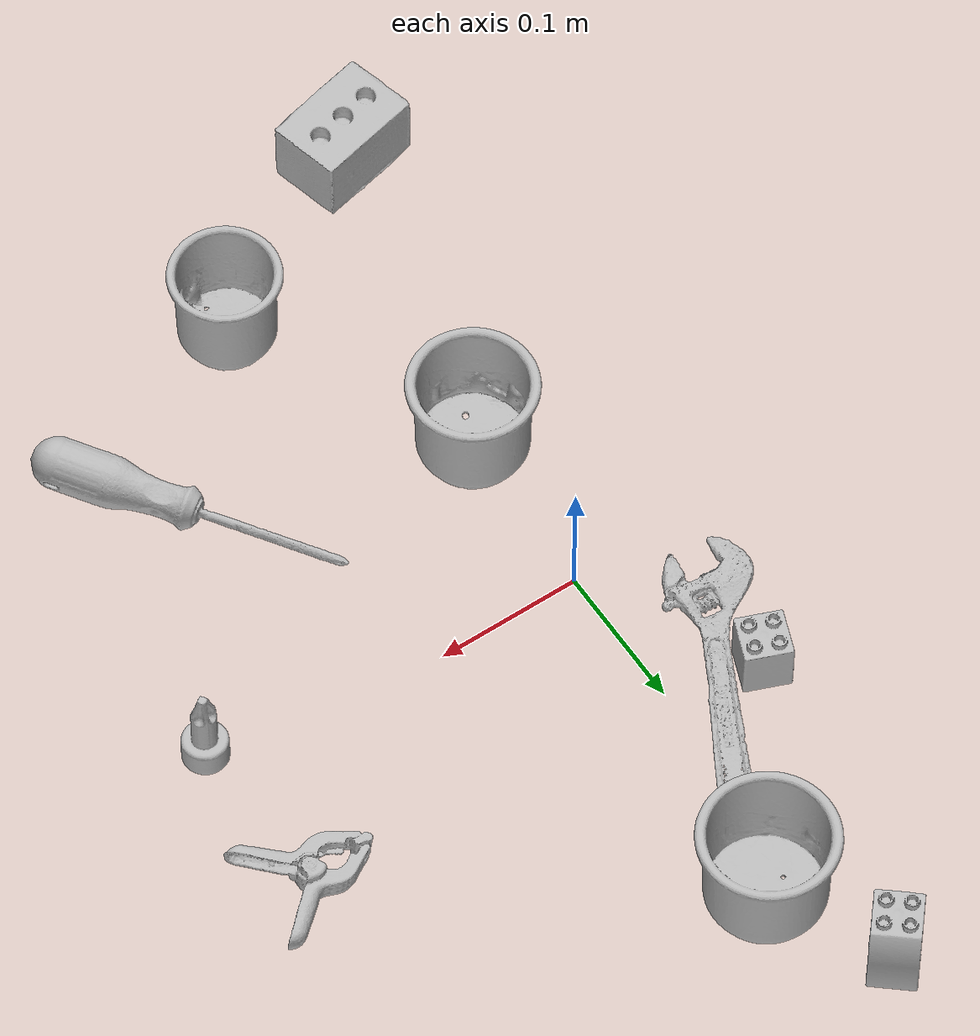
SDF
<sdf version="1.4">
  <world name="default">
    <light name="light1" type="point">
      <pose>0 0 1 0 0 0</pose>
      <diffuse>3 3 3 1</diffuse>
      <specular>3 3 3 1</specular>
    </light>
    <light name="light2" type="point">
      <pose>0 0.5 2 0 0 0</pose>
      <diffuse>1 1 1 1</diffuse>
      <specular>1 1 1 1</specular>
    </light>
    <light name="light3" type="point">
      <pose>0 0.5 2 0 0 0</pose>
      <diffuse>3 3 3 1</diffuse>
      <specular>3 3 3 1</specular>
    </light>
    <scene>
      <ambient>0.7 0.7 0.7</ambient>
    </scene>
    <model name="cup1">
      <link name="link_cup1">
        <collision name="default">
          <geometry>
            <mesh>
              <uri>model://h_cups/collision_meshes/collision.obj</uri>
              <scale>1.0 1.0 1.0</scale>
            </mesh>
          </geometry>
          <surface>
            <friction>
              <ode>
                <mu>0.5</mu>
                <mu2>0.5</mu2>
              </ode>
            </friction>
          <contact>
        <ode>
            <max_vel>0</max_vel>
            <min_depth>0.0001</min_depth>
            <kp>1e8</kp>
        </ode>
    </contact></surface>
        </collision>
        <visual name="default">
          <geometry>
            <mesh>
              <uri>model://h_cups/visual_meshes/visual.dae</uri>
              <scale>1.0 1.0 1.0</scale>
            </mesh>
          </geometry>
        </visual>
        <inertial>
          <mass>0.09017354249954224</mass>
          <pose>-2.702734127524309e-05 0.00023018653155304492 -0.0018405391601845622 -0.024362361674121313 0.06545247408237653 0.12884890922354367</pose>
          <inertia>
            <ixx>0.00011645493</ixx>
            <iyy>0.000115065246</iyy>
            <izz>0.00012212929</izz>
            <ixy>0</ixy>
            <ixz>0</ixz>
            <iyz>0</iyz>
          </inertia>
        </inertial>
      </link>
      <pose>0.029849717393517494 0.25346386432647705 0.0377579964697361 3.9950324584939865e-08 -1.8238209001673105e-07 -0.6914004572569233</pose>
    </model>
    <model name="cup2">
      <link name="link_cup2">
        <collision name="default">
          <geometry>
            <mesh>
              <uri>model://g_cups/collision_meshes/collision.obj</uri>
              <scale>1.0 1.0 1.0</scale>
            </mesh>
          </geometry>
          <surface>
            <friction>
              <ode>
                <mu>0.5</mu>
                <mu2>0.5</mu2>
              </ode>
            </friction>
          <contact>
        <ode>
            <max_vel>0</max_vel>
            <min_depth>0.0001</min_depth>
            <kp>1e8</kp>
        </ode>
    </contact></surface>
        </collision>
        <visual name="default">
          <geometry>
            <mesh>
              <uri>model://g_cups/visual_meshes/visual.dae</uri>
              <scale>1.0 1.0 1.0</scale>
            </mesh>
          </geometry>
        </visual>
        <inertial>
          <mass>0.07892031967639923</mass>
          <pose>-0.0007946275873109698 -4.206384619465098e-05 -0.0021329368464648724 -0.21381953376637775 -0.31410844314425407 0.31119468358147234</pose>
          <inertia>
            <ixx>9.211769e-05</ixx>
            <iyy>9.180432e-05</iyy>
            <izz>9.541806e-05</izz>
            <ixy>0</ixy>
            <ixz>0</ixz>
            <iyz>0</iyz>
          </inertia>
        </inertial>
      </link>
      <pose>-0.00349221657961607 -0.12020552903413773 0.03720300272107124 8.130092516135807e-08 3.0854673252931115e-07 0.18690239946251727</pose>
    </model>
    <model name="cup3">
      <link name="link_cup3">
        <collision name="default">
          <geometry>
            <mesh>
              <uri>model://e_cups/collision_meshes/collision.obj</uri>
              <scale>1.0 1.0 1.0</scale>
            </mesh>
          </geometry>
          <surface>
            <friction>
              <ode>
                <mu>0.5</mu>
                <mu2>0.5</mu2>
              </ode>
            </friction>
          <contact>
        <ode>
            <max_vel>0</max_vel>
            <min_depth>0.0001</min_depth>
            <kp>1e8</kp>
        </ode>
    </contact></surface>
        </collision>
        <visual name="default">
          <geometry>
            <mesh>
              <uri>model://e_cups/visual_meshes/visual.dae</uri>
              <scale>1.0 1.0 1.0</scale>
            </mesh>
          </geometry>
        </visual>
        <inertial>
          <mass>0.08743876963853836</mass>
          <pose>0.0011355745373293757 0.0028797851409763098 -0.0038829741533845663 0.6952398618358687 0.08767880823198544 -0.5235243888876825</pose>
          <inertia>
            <ixx>7.709911e-05</ixx>
            <iyy>8.05796e-05</iyy>
            <izz>7.3715666e-05</izz>
            <ixy>0</ixy>
            <ixz>0</ixz>
            <iyz>0</iyz>
          </inertia>
        </inertial>
      </link>
      <pose>0.08066080510616302 -0.280061811208725 0.035600244998931885 -1.678422920270492e-05 1.0898759106382021e-05 -0.6601665804566204</pose>
    </model>
    <model name="toy1">
      <link name="link_toy1">
        <collision name="default">
          <geometry>
            <mesh>
              <uri>model://d_lego_duplo/collision_meshes/collision.obj</uri>
              <scale>1.0 1.0 1.0</scale>
            </mesh>
          </geometry>
          <surface>
            <friction>
              <ode>
                <mu>0.5</mu>
                <mu2>0.5</mu2>
              </ode>
            </friction>
          <contact>
        <ode>
            <max_vel>0</max_vel>
            <min_depth>0.0001</min_depth>
            <kp>1e8</kp>
        </ode>
    </contact></surface>
        </collision>
        <visual name="default">
          <geometry>
            <mesh>
              <uri>model://d_lego_duplo/visual_meshes/visual.dae</uri>
              <scale>1.0 1.0 1.0</scale>
            </mesh>
          </geometry>
        </visual>
        <inertial>
          <mass>0.04292278364300728</mass>
          <pose>0.002830562647432089 0.00016366151976399124 0.0008589805802330375 0.08010895821025366 -0.3835521883517419 0.0010296961053417666</pose>
          <inertia>
            <ixx>8.309218e-06</ixx>
            <iyy>1.1793034e-05</iyy>
            <izz>1.1372727e-05</izz>
            <ixy>0</ixy>
            <ixz>0</ixz>
            <iyz>0</iyz>
          </inertia>
        </inertial>
      </link>
      <pose>-0.011533161625266075 0.3326730728149414 0.021740010008215904 -3.854449063826396e-08 -1.7930119845904146e-07 -2.2700179003224705</pose>
    </model>
    <model name="toy2">
      <link name="link_toy2">
        <collision name="default">
          <geometry>
            <mesh>
              <uri>model://foam_brick/collision_meshes/collision.obj</uri>
              <scale>1.0 1.0 1.0</scale>
            </mesh>
          </geometry>
          <surface>
            <friction>
              <ode>
                <mu>0.5</mu>
                <mu2>0.5</mu2>
              </ode>
            </friction>
          <contact>
        <ode>
            <max_vel>0</max_vel>
            <min_depth>0.0001</min_depth>
            <kp>1e8</kp>
        </ode>
    </contact></surface>
        </collision>
        <visual name="default">
          <geometry>
            <mesh>
              <uri>model://foam_brick/visual_meshes/visual.dae</uri>
              <scale>1.0 1.0 1.0</scale>
            </mesh>
          </geometry>
        </visual>
        <inertial>
          <mass>0.21218973398208618</mass>
          <pose>-0.0002522472059354186 0.00034584320383146405 -0.0002532101352699101 -0.2940188212014215 0.017274433063530492 -0.0007449861184219897</pose>
          <inertia>
            <ixx>9.268843e-05</ixx>
            <iyy>0.00014798183</iyy>
            <izz>0.00014986254</izz>
            <ixy>0</ixy>
            <ixz>0</ixz>
            <iyz>0</iyz>
          </inertia>
        </inertial>
      </link>
      <pose>-0.057383839040994644 -0.35290002822875977 0.025922803208231926 0.013417105816116213 0.004152432078214565 -2.901483210705091</pose>
    </model>
    <model name="toy3">
      <link name="link_toy3">
        <collision name="default">
          <geometry>
            <mesh>
              <uri>model://f_lego_duplo/collision_meshes/collision.obj</uri>
              <scale>1.0 1.0 1.0</scale>
            </mesh>
          </geometry>
          <surface>
            <friction>
              <ode>
                <mu>0.5</mu>
                <mu2>0.5</mu2>
              </ode>
            </friction>
          <contact>
        <ode>
            <max_vel>0</max_vel>
            <min_depth>0.0001</min_depth>
            <kp>1e8</kp>
        </ode>
    </contact></surface>
        </collision>
        <visual name="default">
          <geometry>
            <mesh>
              <uri>model://f_lego_duplo/visual_meshes/visual.dae</uri>
              <scale>1.0 1.0 1.0</scale>
            </mesh>
          </geometry>
        </visual>
        <inertial>
          <mass>0.024021470919251442</mass>
          <pose>2.3694197807344608e-05 0.00013393140397965908 0.0018837875686585903 0.02983869554967358 -0.014424868856459862 -0.6756716113514201</pose>
          <inertia>
            <ixx>5.075869e-06</ixx>
            <iyy>5.1210886e-06</iyy>
            <izz>4.4060694e-06</izz>
            <ixy>0</ixy>
            <ixz>0</ixz>
            <iyz>0</iyz>
          </inertia>
        </inertial>
      </link>
      <pose>-0.06244293227791786 0.11823061853647232 0.021871007978916168 3.2932561921377735e-06 8.852877967115598e-07 -0.37268194817395656</pose>
    </model>
    <model name="toy4">
      <link name="link_toy4">
        <collision name="default">
          <geometry>
            <mesh>
              <uri>model://d_toy_airplane/collision_meshes/collision.obj</uri>
              <scale>1.0 1.0 1.0</scale>
            </mesh>
          </geometry>
          <surface>
            <friction>
              <ode>
                <mu>0.5</mu>
                <mu2>0.5</mu2>
              </ode>
            </friction>
          <contact>
        <ode>
            <max_vel>0</max_vel>
            <min_depth>0.0001</min_depth>
            <kp>1e8</kp>
        </ode>
    </contact></surface>
        </collision>
        <visual name="default">
          <geometry>
            <mesh>
              <uri>model://d_toy_airplane/visual_meshes/visual.dae</uri>
              <scale>1.0 1.0 1.0</scale>
            </mesh>
          </geometry>
        </visual>
        <inertial>
          <mass>0.024586454033851624</mass>
          <pose>9.410288475919515e-05 -5.809331560158171e-05 -0.011728096753358841 0.0002662237897190017 0.004679022855495211 0.5193045098973154</pose>
          <inertia>
            <ixx>7.370539e-06</ixx>
            <iyy>7.376099e-06</iyy>
            <izz>2.2252145e-06</izz>
            <ixy>0</ixy>
            <ixz>0</ixz>
            <iyz>0</iyz>
          </inertia>
        </inertial>
      </link>
      <pose>0.2624196708202362 -0.023165011778473854 0.033338434994220734 0.0001772003059912194 -6.837269094048034e-05 0.6105238914125666</pose>
    </model>
    <model name="hardware1">
      <link name="link_hardware1">
        <collision name="default">
          <geometry>
            <mesh>
              <uri>model://phillips_screwdriver/collision_meshes/collision.obj</uri>
              <scale>1.0 1.0 1.0</scale>
            </mesh>
          </geometry>
          <surface>
            <friction>
              <ode>
                <mu>0.5</mu>
                <mu2>0.5</mu2>
              </ode>
            </friction>
          <contact>
        <ode>
            <max_vel>0</max_vel>
            <min_depth>0.0001</min_depth>
            <kp>1e8</kp>
        </ode>
    </contact></surface>
        </collision>
        <visual name="default">
          <geometry>
            <mesh>
              <uri>model://phillips_screwdriver/visual_meshes/visual.dae</uri>
              <scale>1.0 1.0 1.0</scale>
            </mesh>
          </geometry>
        </visual>
        <inertial>
          <mass>0.10962587594985962</mass>
          <pose>-0.04777182266116142 0.0010362300090491772 -0.00045555492397397757 -0.1572763288958183 0.005850995451121224 -0.002156747064170485</pose>
          <inertia>
            <ixx>1.2879916e-05</ixx>
            <iyy>0.00016149164</iyy>
            <izz>0.00016162884</izz>
            <ixy>0</ixy>
            <ixz>0</ixz>
            <iyz>0</iyz>
          </inertia>
        </inertial>
      </link>
      <pose>0.17984026670455933 -0.17462247610092163 0.015409660525619984 0.06561034281803918 0.03756794458969813 2.1906388495492086</pose>
    </model>
    <model name="hardware2">
      <link name="link_hardware2">
        <collision name="default">
          <geometry>
            <mesh>
              <uri>model://adjustable_wrench/collision_meshes/collision.obj</uri>
              <scale>1.0 1.0 1.0</scale>
            </mesh>
          </geometry>
          <surface>
            <friction>
              <ode>
                <mu>0.5</mu>
                <mu2>0.5</mu2>
              </ode>
            </friction>
          <contact>
        <ode>
            <max_vel>0</max_vel>
            <min_depth>0.0001</min_depth>
            <kp>1e8</kp>
        </ode>
    </contact></surface>
        </collision>
        <visual name="default">
          <geometry>
            <mesh>
              <uri>model://adjustable_wrench/visual_meshes/visual.dae</uri>
              <scale>1.0 1.0 1.0</scale>
            </mesh>
          </geometry>
        </visual>
        <inertial>
          <mass>0.02999398298561573</mass>
          <pose>0.03740980848670006 -0.002896887483075261 -0.001114922808483243 -0.014473357351062987 0.006656019865341655 -0.010954188906160397</pose>
          <inertia>
            <ixx>6.138701e-06</ixx>
            <iyy>7.184631e-05</iyy>
            <izz>7.765895e-05</izz>
            <ixy>0</ixy>
            <ixz>0</ixz>
            <iyz>0</iyz>
          </inertia>
        </inertial>
      </link>
      <pose>-0.03449961543083191 0.10741159319877625 0.006125049199908972 0.04676015492266175 -0.02927046780144406 -2.078882794291915</pose>
    </model>
    <model name="hardware3">
      <link name="link_hardware3">
        <collision name="default">
          <geometry>
            <mesh>
              <uri>model://medium_clamp/collision_meshes/collision.obj</uri>
              <scale>1.0 1.0 1.0</scale>
            </mesh>
          </geometry>
          <surface>
            <friction>
              <ode>
                <mu>0.5</mu>
                <mu2>0.5</mu2>
              </ode>
            </friction>
          <contact>
        <ode>
            <max_vel>0</max_vel>
            <min_depth>0.0001</min_depth>
            <kp>1e8</kp>
        </ode>
    </contact></surface>
        </collision>
        <visual name="default">
          <geometry>
            <mesh>
              <uri>model://medium_clamp/visual_meshes/visual.dae</uri>
              <scale>1.0 1.0 1.0</scale>
            </mesh>
          </geometry>
        </visual>
        <inertial>
          <mass>0.038817502558231354</mass>
          <pose>0.005390993785113096 0.0003953237028326839 -0.0001222158462041989 -0.0012269117309439718 0.002584502422387493 0.03820772500943274</pose>
          <inertia>
            <ixx>1.05752815e-05</ixx>
            <iyy>1.539003e-05</iyy>
            <izz>2.3705257e-05</izz>
            <ixy>0</ixy>
            <ixz>0</ixz>
            <iyz>0</iyz>
          </inertia>
        </inertial>
      </link>
      <pose>0.259893536567688 0.09142395108938217 0.013534065335988998 0.07684563169248715 0.08544256727340242 3.1403710589238782</pose>
    </model>
  <physics type="ode">
      <max_contacts>50</max_contacts>
      <ode>
        <solver>
          <type>quick</type>
          <iters>75</iters>
        </solver>
        <constraints>
          <contact_max_correcting_vel>0</contact_max_correcting_vel>
          <contact_surface_layer>0</contact_surface_layer>
        </constraints>
      </ode>
    </physics></world>
</sdf>
